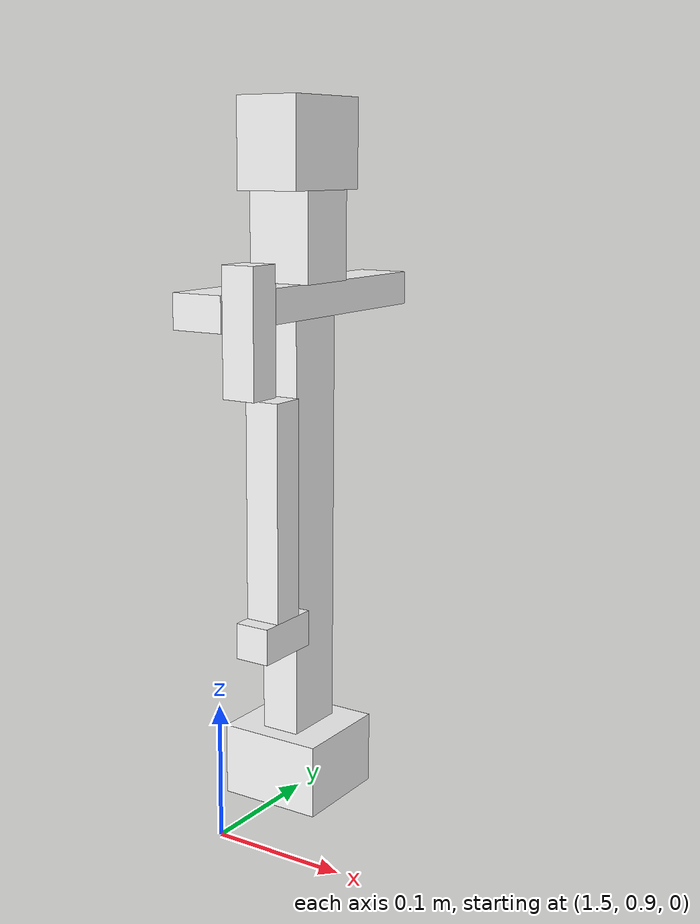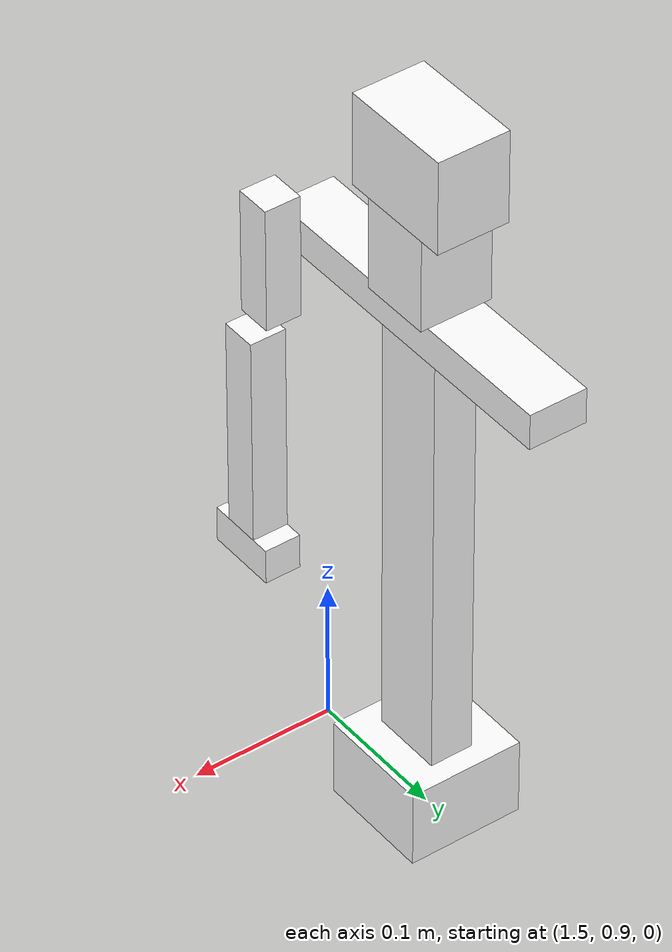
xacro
<?xml version="1.0"?>
<robot xmlns:xacro="http://www.ros.org/wiki/xacro" name="hubert_robot">

  <xacro:include filename="test_include.xacro" />

  <link name="world" />

  <joint name="world_joint" type="fixed">
    <origin xyz="1.5 1.0 0" rpy="0 0 0"/>
    <parent link="world"/>
    <child link="base_link"/>
  </joint>

  <link name="base_link">
    <visual>
      <origin xyz="0 0 0.0275" rpy="0 0 0"/>
      <geometry>
        <box size="0.08 0.08 0.055" />
      </geometry>
      <material name="white" />
    </visual>
    <collision>
      <origin xyz="0 0 0.0275" rpy="0 0 0"/>
      <geometry>
        <box size="0.08 0.08 0.055" />
      </geometry>
    </collision>
    <xacro:inertial_box mass="0.5" x="0.08" y="0.08" z="0.055">
      <origin xyz="0 0 0.0275" rpy="0 0 0"/>
    </xacro:inertial_box>
  </link>

  <joint name="base_joint" type="revolute">
    <parent link="base_link"/>
    <child link="body_link"/>
    <origin xyz="0 0 0.055" rpy="0 0 0" />
    <axis xyz="0 0 1" />
    <limit lower="-1.57" upper="1.57" velocity="100" effort="100"/>
  </joint>

  <link name="body_link">
    <visual>
      <origin xyz="0 0 0.1575" rpy="0 0 0"/>
      <geometry>
        <box size="0.03 0.05 0.315"/>
      </geometry>
      <material name="white" />
    </visual>
    <collision>
      <origin xyz="0 0 0.1575" rpy="0 0 0"/>
      <geometry>
        <box size="0.03 0.05 0.315" />
      </geometry>
    </collision>
    <xacro:inertial_box mass="0.5" x="0.03" y="0.05" z="0.315">
      <origin xyz="0 0 0.1575" rpy="0 0 0"/>
    </xacro:inertial_box>
  </link>

  <joint name="chest_joint" type="fixed">
    <parent link="body_link"/>
    <child link="shoulder_link"/>
    <origin xyz="0 0 0.315" rpy="0 0 0" />
  </joint>

  <link name="shoulder_link">
    <visual>
      <origin xyz="0 0 0.0125" rpy="0 0 0"/>
      <geometry>
        <box size="0.04 0.24 0.025"/>
      </geometry>
      <material name="white" />
    </visual>
    <collision>
      <origin xyz="0 0 0.0125" rpy="0 0 0"/>
      <geometry>
        <box size="0.04 0.24 0.025" />
      </geometry>
    </collision>
    <xacro:inertial_box mass="0.5" x="0.04" y="0.24" z="0.025">
      <origin xyz="0 0 0.0125" rpy="0 0 0"/>
    </xacro:inertial_box>
  </link>

  <joint name="neck_joint" type="revolute">
    <parent link="shoulder_link"/>
    <child link="neck_link"/>
    <origin xyz="0 0 0.025" rpy="0 0 0" />
    <axis xyz="0 0 1" />
    <limit lower="-1.57" upper="1.57" velocity="100" effort="100"/>
  </joint>

  <link name="neck_link">
    <visual>
      <origin xyz="0 0 0.0325" rpy="0 0 0"/>
      <geometry>
        <box size="0.05 0.05 0.065"/>
      </geometry>
      <material name="white" />
    </visual>
    <collision>
      <origin xyz="0 0 0.325" rpy="0 0 0"/>
      <geometry>
        <box size="0.05 0.05 0.65" />
      </geometry>
    </collision>
    <xacro:inertial_box mass="0.5" x="0.05" y="0.05" z="0.65">
      <origin xyz="0 0 0.325" rpy="0 0 0"/>
    </xacro:inertial_box>
  </link>

  <joint name="cam_joint" type="revolute">
    <parent link="neck_link"/>
    <child link="cam_link"/>
    <origin xyz="0 0 0.065" rpy="-1.57 0 0" />
    <axis xyz="0 0 1" />
    <limit lower="-0.785" upper="1.57" velocity="100" effort="100"/>
  </joint>

  <!-- Here z => y and y => -z -->
  <link name="cam_link">
    <visual>
      <origin xyz="0 -0.0325 0" rpy="0 0 0"/>
      <geometry>
        <box size="0.05 -0.065 0.08"/>
      </geometry>
      <material name="white" />
    </visual>
    <collision>
      <origin xyz="0 0 0.325" rpy="0 0 0"/>
      <geometry>
        <box size="0.05 0.08 0.65" />
      </geometry>
    </collision>
    <xacro:inertial_box mass="0.5" x="0.05" y="0.08" z="0.65">
      <origin xyz="0 0 0.325" rpy="0 0 0"/>
    </xacro:inertial_box>
  </link>

  <joint name="shoulder_joint" type="revolute">
    <parent link="shoulder_link"/>
    <child link="arm_link"/>
    <origin xyz="0.034 -0.108 0.045" rpy="1.57 0 0" />
    <axis xyz="0 0 1" />
    <limit lower="-0.26" upper="1.57" velocity="100" effort="100"/>
  </joint>

  <link name="arm_link">
    <visual>
      <origin xyz="0 -0.044 0" rpy="0 0 0"/>
      <geometry>
        <box size="0.025 0.088 0.025"/>
      </geometry>
      <material name="white" />
    </visual>
    <collision>
      <origin xyz="0 0 -0.044" rpy="0 0 0"/>
      <geometry>
        <box size="0.025 0.025 0.088" />
      </geometry>
    </collision>
    <xacro:inertial_box mass="0.5" x="0.025" y="0.025" z="0.088">
      <origin xyz="0 0 -0.044" rpy="0 0 0"/>
    </xacro:inertial_box>
  </link>

  <!-- Origin values to modify -->
  <!-- Should the origin be rotated again as the last joint already is? -->
  <joint name="elbow_joint" type="revolute">
    <parent link="arm_link"/>
    <child link="forearm_link"/>
    <origin xyz="0.015 -0.088 -0.005" rpy="0 0 0" />
    <axis xyz="0 0 1" />
    <limit lower="-1.57" upper="1.57" velocity="100" effort="100"/>
  </joint>

  <link name="forearm_link">
    <visual>
      <origin xyz="0 -0.075 0 " rpy="0 0 0"/>
      <geometry>
        <box size="0.025 0.15 0.025"/>
      </geometry>
      <material name="white" />
    </visual>
    <collision>
      <origin xyz="0 -0.075 0" rpy="0 0 0"/>
      <geometry>
        <box size="0.025 0.15 0.025" />
      </geometry>
    </collision>
    <xacro:inertial_box mass="0.5" x="0.025" y="0.025" z="0.204">
      <origin xyz="0 0 -0.102" rpy="0 0 0"/>
    </xacro:inertial_box>
  </link>

  <!-- Axis values to modify -->
  <joint name="end_joint" type="fixed">
    <parent link="forearm_link"/>
    <child link="end_link"/>
    <origin xyz="0 -0.15 0" rpy="0 0 0" />
    <axis xyz="0 0 0" />
  </joint>

  <link name="end_link">
    <visual>
      <origin xyz="0 -0.0125 0" rpy="0 0 0"/>
      <geometry>
        <box size="0.025 0.025 0.05"/>
      </geometry>
      <material name="white" />
    </visual>
    <collision>
      <origin xyz="0 0 -0.0125" rpy="0 0 0"/>
      <geometry>
        <box size="0.025 0.05 0.025" />
      </geometry>
    </collision>
    <xacro:inertial_box mass="0.5" x="0.025" y="0.05" z="0.025">
      <origin xyz="0 0 -0.0125" rpy="0 0 0"/>
    </xacro:inertial_box>
  </link>

</robot>

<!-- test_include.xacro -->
<robot xmlns:xacro="http://www.ros.org/wiki/xacro" >

    <material name="white">
        <color rgba="1 1 1 1"/>
    </material>

    <xacro:macro name="inertial_box" params="mass x y z *origin">
        <inertial>
            <xacro:insert_block name="origin"/>
            <mass value="${mass}" />
            <inertia ixx="${(1/12) * mass * (y*y+z*z)}" ixy="0.0" ixz="0.0"
                    iyy="${(1/12) * mass * (x*x+z*z)}" iyz="0.0"
                    izz="${(1/12) * mass * (x*x+y*y)}" />
        </inertial>
    </xacro:macro>

</robot>
